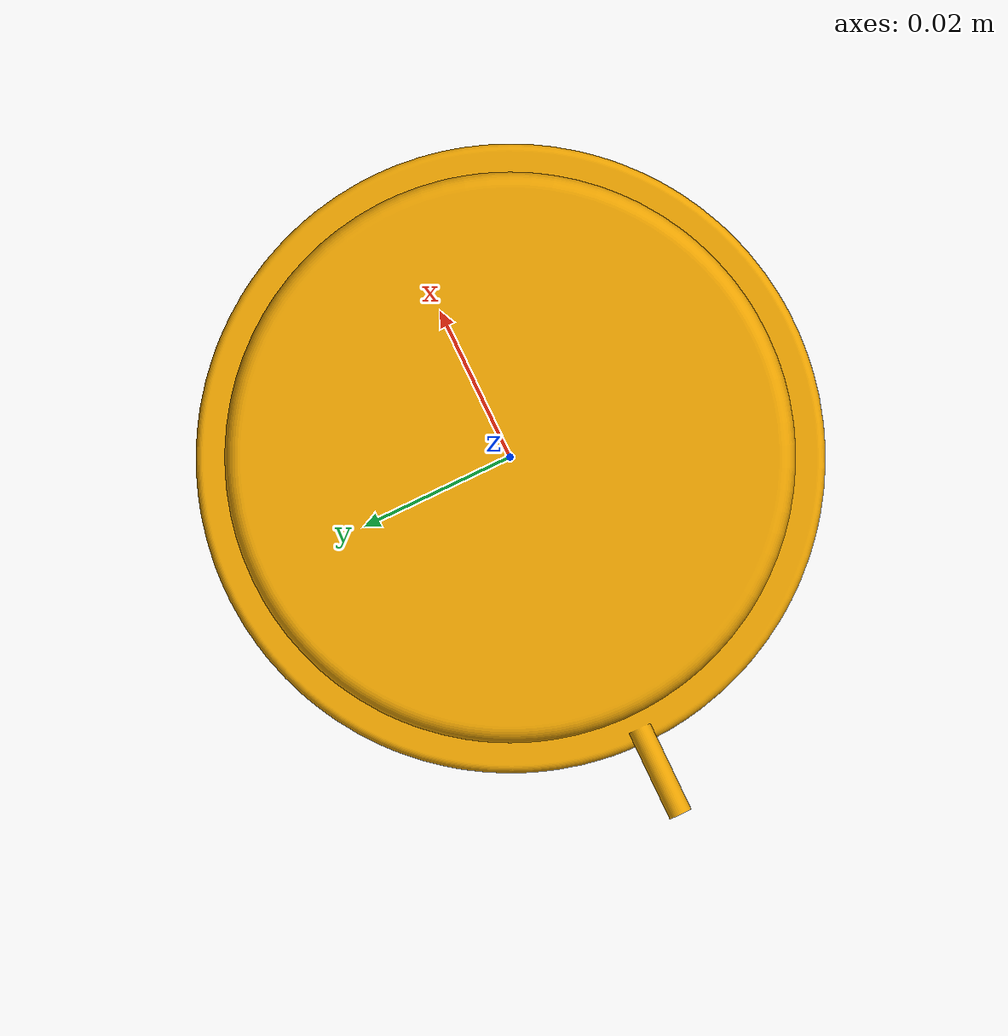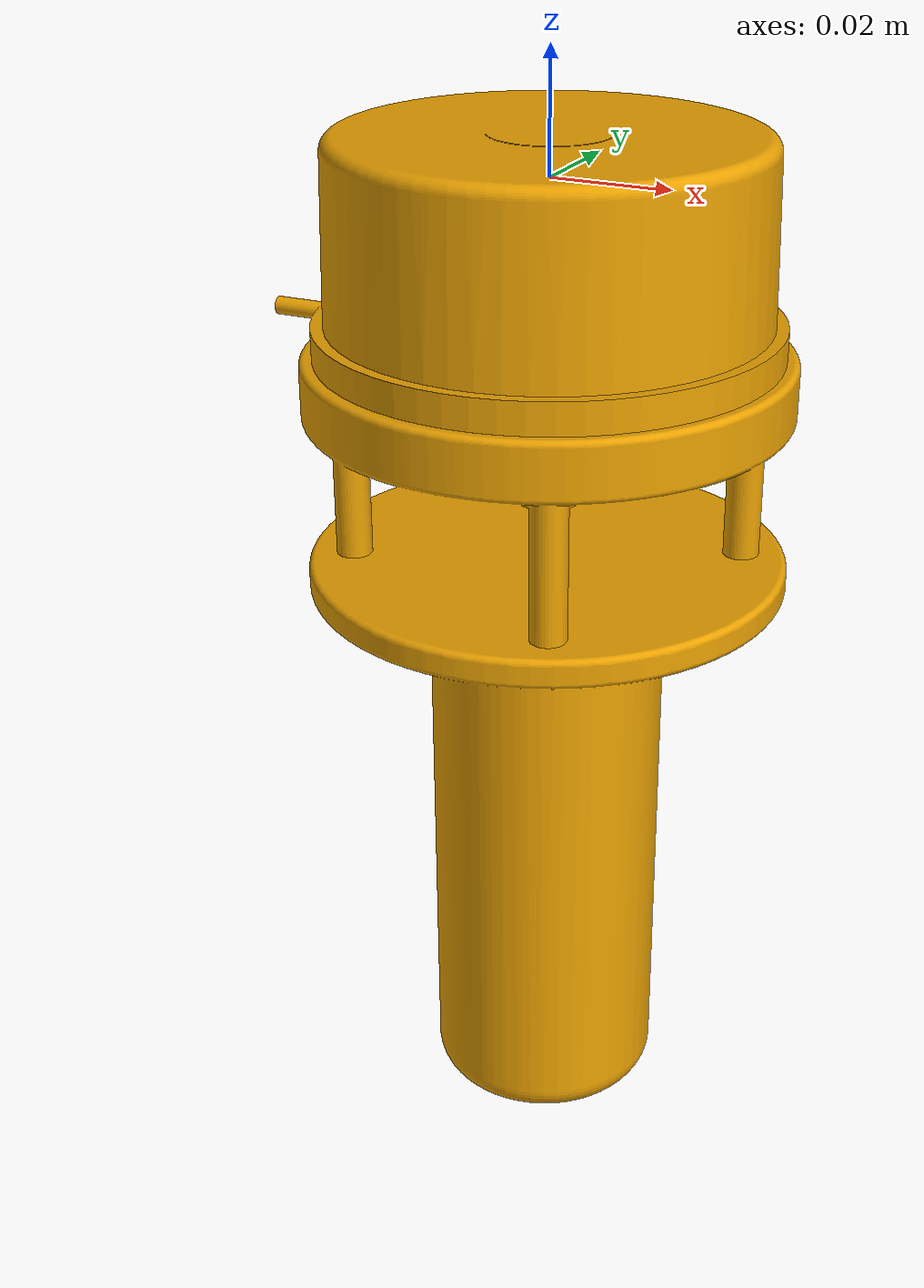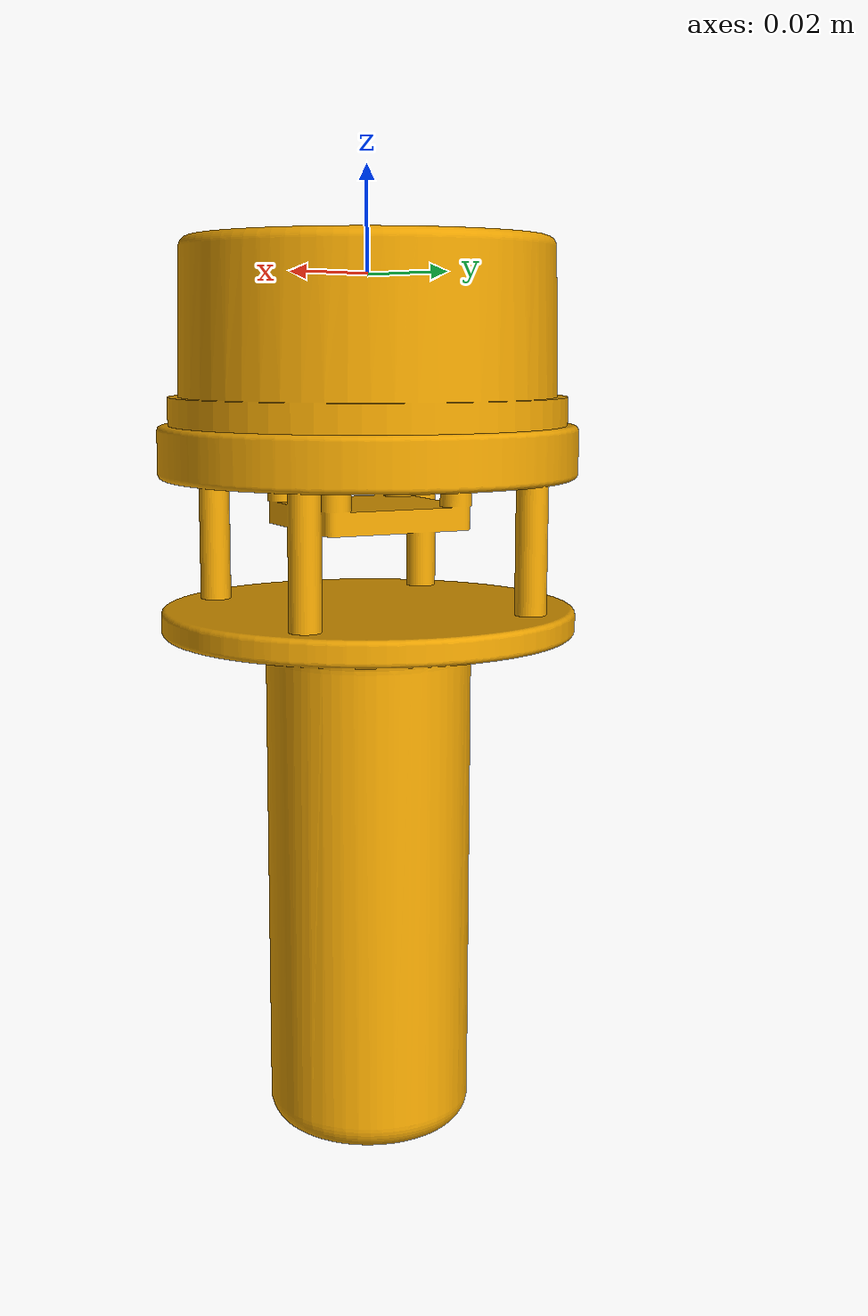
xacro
<?xml version="1.0"?>
<robot xmlns:xacro="http://www.ros.org/wiki/xacro" name="hand_lidar_robot">

  <!-- Base Link -->
  <link name="base_link">
    <visual>
      <geometry>
        <mesh filename="package://lidar_imu_driver/urdf/hand_lidar.dae" scale="1 1 1"/>
      </geometry>
    </visual>
  </link>

  <!-- Imu Joint (Fixed) -->
  <joint name="base_to_imu" type="fixed">
    <parent link="base_link"/>
    <child link="imu_frame"/>
    <origin xyz="0 0 0" rpy="0 0 0"/>
  </joint>

  <!-- Imu Link -->
  <link name="imu_frame"/>

  <!-- Lidar Joint (Fixed) -->
  <joint name="imu_to_lidar" type="fixed">
    <parent link="imu_frame"/>
    <child link="laser_frame"/>
    <origin xyz="0 0 0.0324" rpy="0 0 0.1744"/>
  </joint>

  <!-- Lidar Link -->
  <link name="laser_frame"/>

</robot>
